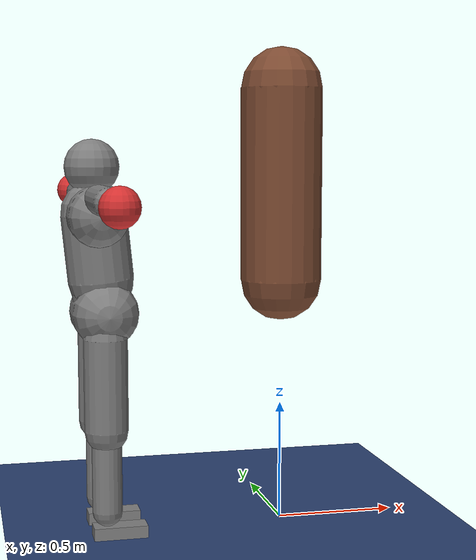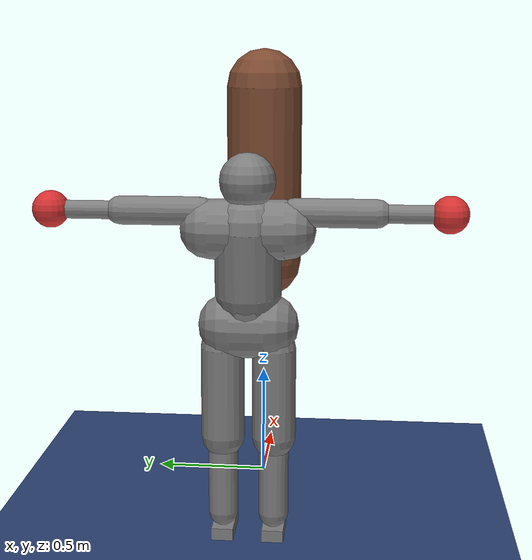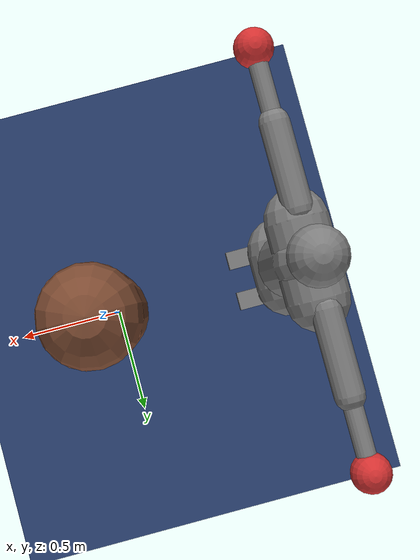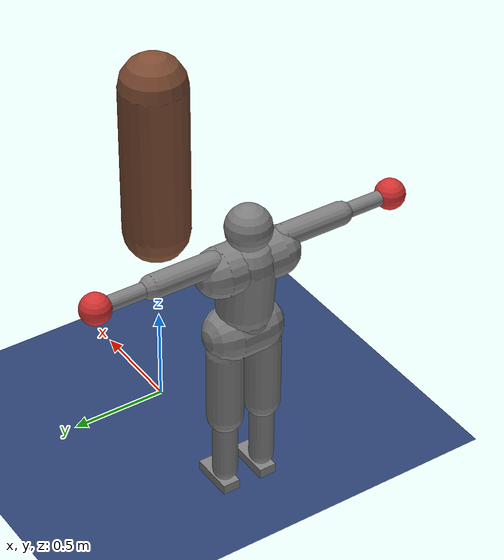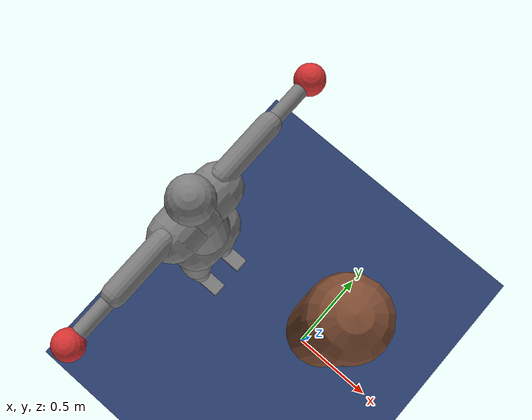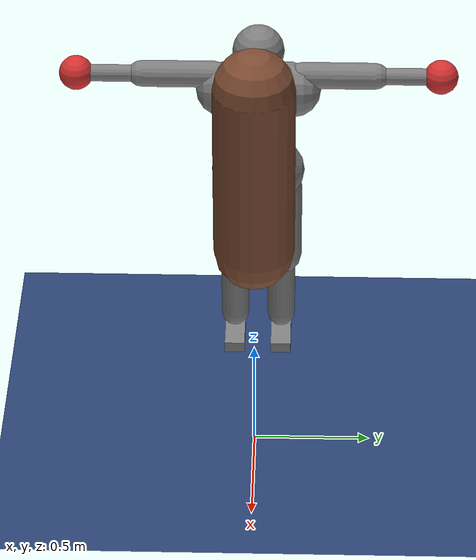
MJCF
<mujoco model="grandpa_bag">
  <compiler angle="degree" inertiafromgeom="true" autolimits="true"/>
  <option timestep="0.005" iterations="10" ls_iterations="10" integrator="implicitfast">
    <flag eulerdamp="disable"/>
  </option>
  <default>
    <geom contype="1" conaffinity="1" condim="3" friction="1.0 0.005 0.0001" density="1000" margin="0"/>
    <joint limited="true"/>
    <position ctrllimited="true"/>
  </default>
  <asset>
    <texture name="grid" type="2d" builtin="checker" rgb1=".18 .28 .48" rgb2=".14 .22 .40" width="300" height="300"/>
    <material name="grid" texture="grid" texrepeat="6 6" reflectance="0"/>
  </asset>
  <worldbody>
    <light pos="0 0 5" dir="0 0 -1" directional="true"/>
    <geom name="floor" type="plane" size="0 0 0.05" material="grid" friction="1.0 0.005 0.0001"/>

    <body name="a_pelvis" pos="-0.7500 0.0000 0.9146" quat="1.00000 0 0 0.00000">
      <freejoint name="a_root"/>
      <geom name="a_pelvis_geom" type="capsule" fromto="0.0000 -0.0700 0.0000 0.0000 0.0700 0.0000" size="0.1350" mass="6.7965" />
      <geom name="a_pelvis_up" type="capsule" fromto="0.0000 0.0000 0.0000 -0.0099 0.0000 0.0920" size="0.1215" mass="4.3789" />
      <body name="a_torso" pos="-0.0099 0.0000 0.1120">
        <joint name="a_abdomen_z" type="hinge" axis="0 0 1" range="-45 45" damping="0.5" armature="0.08" stiffness="0"/>
        <joint name="a_abdomen_y" type="hinge" axis="0 1 0" range="-60 30" damping="0.5" armature="0.08" stiffness="0"/>
        <joint name="a_abdomen_x" type="hinge" axis="1 0 0" range="-35 35" damping="0.5" armature="0.08" stiffness="0"/>
        <geom name="a_torso_geom" type="capsule" fromto="0.0000 0.0000 0.0200 -0.0268 0.0000 0.2932" size="0.1350" mass="27.9385" />
        <geom name="a_chest_geom" type="capsule" fromto="-0.0230 -0.1505 0.2866 -0.0230 0.1505 0.2866" size="0.1215" mass="0.5"/>
        <geom name="a_head_geom" type="sphere" pos="-0.0325 0.0000 0.4807" size="0.1127" mass="6.3747" />
        <body name="a_upper_arm_l" pos="-0.0287 0.1881 0.3582">
          <joint name="a_shoulder_x_l" type="hinge" axis="1 0 0" range="-170 30" damping="0.5" armature="0.03" stiffness="0"/>
          <joint name="a_shoulder_z_l" type="hinge" axis="0 0 1" range="-110 110" damping="0.5" armature="0.03" stiffness="0"/>
          <geom name="a_upper_arm_l_geom" type="capsule" fromto="0.0000 0.0000 0.0000 0.0000 0.3197 0.0000" size="0.0580" mass="2.2036" />
          <body name="a_forearm_l" pos="0.0000 0.3197 0.0000">
            <joint name="a_elbow_l" type="hinge" axis="0 0 1" range="-150 0" damping="0.5" armature="0.02" stiffness="0"/>
            <geom name="a_forearm_l_geom" type="capsule" fromto="0.0000 0.0000 0.0000 0.0000 0.2162 0.0000" size="0.0373" mass="1.2592" />
            <geom name="a_glove_l" type="sphere" pos="0.0000 0.2837 0.0000" size="0.0750" mass="0.7552" rgba="0.85 0.2 0.2 1"/>
          </body>
        </body>
        <body name="a_upper_arm_r" pos="-0.0287 -0.1881 0.3582">
          <joint name="a_shoulder_x_r" type="hinge" axis="1 0 0" range="-30 170" damping="0.5" armature="0.03" stiffness="0"/>
          <joint name="a_shoulder_z_r" type="hinge" axis="0 0 1" range="-110 110" damping="0.5" armature="0.03" stiffness="0"/>
          <geom name="a_upper_arm_r_geom" type="capsule" fromto="0.0000 0.0000 0.0000 0.0000 -0.3197 0.0000" size="0.0580" mass="2.2036" />
          <body name="a_forearm_r" pos="0.0000 -0.3197 0.0000">
            <joint name="a_elbow_r" type="hinge" axis="0 0 1" range="0 150" damping="0.5" armature="0.02" stiffness="0"/>
            <geom name="a_forearm_r_geom" type="capsule" fromto="0.0000 0.0000 0.0000 0.0000 -0.2162 0.0000" size="0.0373" mass="1.2592" />
            <geom name="a_glove_r" type="sphere" pos="0.0000 -0.2837 0.0000" size="0.0750" mass="0.7552" rgba="0.85 0.2 0.2 1"/>
          </body>
        </body>
      </body>
      <body name="a_thigh_l" pos="-0.0082 0.1049 -0.0932">
        <joint name="a_hip_x_l" type="hinge" axis="1 0 0" range="-40 40" damping="0.5" armature="0.1" stiffness="0"/>
        <joint name="a_hip_z_l" type="hinge" axis="0 0 1" range="-35 35" damping="0.5" armature="0.1" stiffness="0"/>
        <joint name="a_hip_y_l" type="hinge" axis="0 1 0" range="-120 30" damping="0.5" armature="0.1" stiffness="0"/>
        <geom name="a_thigh_l_geom" type="capsule" fromto="0.0000 0.0000 0.0000 0.0000 0.0000 -0.3769" size="0.0900" mass="7.8700" />
        <body name="a_shin_l" pos="0.0000 0.0000 -0.3769">
          <joint name="a_knee_l" type="hinge" axis="0 1 0" range="0 150" damping="0.5" armature="0.1" stiffness="0"/>
          <geom name="a_shin_l_geom" type="capsule" fromto="0.0000 0.0000 0.0000 0.0000 0.0000 -0.3360" size="0.0620" mass="3.6596" />
          <body name="a_foot_l" pos="0.0000 0.0000 -0.3360">
            <joint name="a_ankle_y_l" type="hinge" axis="0 1 0" range="-20 50" damping="0.5" armature="0.03" stiffness="0"/>
            <joint name="a_ankle_x_l" type="hinge" axis="1 0 0" range="-25 25" damping="0.5" armature="0.03" stiffness="0"/>
            <geom name="a_foot_l_geom" type="box" pos="0.0506 0.0000 -0.0887" size="0.1100 0.0450 0.0280" mass="1.1412" friction="1.0 0.005 0.0001"/>
            <site name="a_foot_l_site" pos="0.0506 0.0000 -0.0887" size="0.01"/>
          </body>
        </body>
      </body>
      <body name="a_thigh_r" pos="-0.0082 -0.1049 -0.0932">
        <joint name="a_hip_x_r" type="hinge" axis="1 0 0" range="-40 40" damping="0.5" armature="0.1" stiffness="0"/>
        <joint name="a_hip_z_r" type="hinge" axis="0 0 1" range="-35 35" damping="0.5" armature="0.1" stiffness="0"/>
        <joint name="a_hip_y_r" type="hinge" axis="0 1 0" range="-120 30" damping="0.5" armature="0.1" stiffness="0"/>
        <geom name="a_thigh_r_geom" type="capsule" fromto="0.0000 0.0000 0.0000 0.0000 0.0000 -0.3769" size="0.0900" mass="7.8700" />
        <body name="a_shin_r" pos="0.0000 0.0000 -0.3769">
          <joint name="a_knee_r" type="hinge" axis="0 1 0" range="0 150" damping="0.5" armature="0.1" stiffness="0"/>
          <geom name="a_shin_r_geom" type="capsule" fromto="0.0000 0.0000 0.0000 0.0000 0.0000 -0.3360" size="0.0620" mass="3.6596" />
          <body name="a_foot_r" pos="0.0000 0.0000 -0.3360">
            <joint name="a_ankle_y_r" type="hinge" axis="0 1 0" range="-20 50" damping="0.5" armature="0.03" stiffness="0"/>
            <joint name="a_ankle_x_r" type="hinge" axis="1 0 0" range="-25 25" damping="0.5" armature="0.03" stiffness="0"/>
            <geom name="a_foot_r_geom" type="box" pos="0.0506 0.0000 -0.0887" size="0.1100 0.0450 0.0280" mass="1.1412" friction="1.0 0.005 0.0001"/>
            <site name="a_foot_r_site" pos="0.0506 0.0000 -0.0887" size="0.01"/>
          </body>
        </body>
      </body>
    </body>
    <body name="bag" pos="0 0 2.45">
      <joint name="bag_swing" type="ball" damping="6"/>
      <geom name="bag_geom" type="capsule" fromto="0 0 -0.62 0 0 -1.42" size="0.17" mass="35" rgba="0.5 0.3 0.2 1"/>
      <site name="bag_head" pos="0 0 -0.82" size="0.02"/>
      <site name="bag_body" pos="0 0 -1.22" size="0.02"/>
    </body>
  </worldbody>
  <contact>
    <exclude body1="a_pelvis" body2="a_torso"/>
    <exclude body1="a_pelvis" body2="a_thigh_l"/>
    <exclude body1="a_thigh_l" body2="a_shin_l"/>
    <exclude body1="a_shin_l" body2="a_foot_l"/>
    <exclude body1="a_torso" body2="a_upper_arm_l"/>
    <exclude body1="a_upper_arm_l" body2="a_forearm_l"/>
    <exclude body1="a_pelvis" body2="a_thigh_r"/>
    <exclude body1="a_thigh_r" body2="a_shin_r"/>
    <exclude body1="a_shin_r" body2="a_foot_r"/>
    <exclude body1="a_torso" body2="a_upper_arm_r"/>
    <exclude body1="a_upper_arm_r" body2="a_forearm_r"/>
  </contact>
  <actuator>
    <position name="a_abdomen_z" joint="a_abdomen_z" kp="216.45" kv="10.101" forcerange="-81.77 81.77" ctrlrange="-0.7854 0.7854"/>
    <position name="a_abdomen_y" joint="a_abdomen_y" kp="216.45" kv="10.101" forcerange="-81.77 81.77" ctrlrange="-1.0472 0.5236"/>
    <position name="a_abdomen_x" joint="a_abdomen_x" kp="216.45" kv="10.101" forcerange="-81.77 81.77" ctrlrange="-0.6109 0.6109"/>
    <position name="a_shoulder_x_l" joint="a_shoulder_x_l" kp="76.96" kv="3.848" forcerange="-48.1 48.1" ctrlrange="-2.9671 0.5236"/>
    <position name="a_shoulder_z_l" joint="a_shoulder_z_l" kp="76.96" kv="3.848" forcerange="-48.1 48.1" ctrlrange="-1.9199 1.9199"/>
    <position name="a_elbow_l" joint="a_elbow_l" kp="52.91" kv="2.645" forcerange="-33.67 33.67" ctrlrange="-2.6180 0.0000"/>
    <position name="a_shoulder_x_r" joint="a_shoulder_x_r" kp="76.96" kv="3.848" forcerange="-48.1 48.1" ctrlrange="-0.5236 2.9671"/>
    <position name="a_shoulder_z_r" joint="a_shoulder_z_r" kp="76.96" kv="3.848" forcerange="-48.1 48.1" ctrlrange="-1.9199 1.9199"/>
    <position name="a_elbow_r" joint="a_elbow_r" kp="52.91" kv="2.645" forcerange="-33.67 33.67" ctrlrange="0.0000 2.6180"/>
    <position name="a_hip_x_l" joint="a_hip_x_l" kp="288.6" kv="14.43" forcerange="-115.44 115.44" ctrlrange="-0.6981 0.6981"/>
    <position name="a_hip_z_l" joint="a_hip_z_l" kp="288.6" kv="14.43" forcerange="-115.44 115.44" ctrlrange="-0.6109 0.6109"/>
    <position name="a_hip_y_l" joint="a_hip_y_l" kp="288.6" kv="14.43" forcerange="-115.44 115.44" ctrlrange="-2.0944 0.5236"/>
    <position name="a_knee_l" joint="a_knee_l" kp="288.6" kv="14.43" forcerange="-125.06 125.06" ctrlrange="0.0000 2.6180"/>
    <position name="a_ankle_y_l" joint="a_ankle_y_l" kp="360.75" kv="14.43" forcerange="-105.82 105.82" ctrlrange="-0.3491 0.8727"/>
    <position name="a_ankle_x_l" joint="a_ankle_x_l" kp="38.48" kv="1.924" forcerange="-28.86 28.86" ctrlrange="-0.4363 0.4363"/>
    <position name="a_hip_x_r" joint="a_hip_x_r" kp="288.6" kv="14.43" forcerange="-115.44 115.44" ctrlrange="-0.6981 0.6981"/>
    <position name="a_hip_z_r" joint="a_hip_z_r" kp="288.6" kv="14.43" forcerange="-115.44 115.44" ctrlrange="-0.6109 0.6109"/>
    <position name="a_hip_y_r" joint="a_hip_y_r" kp="288.6" kv="14.43" forcerange="-115.44 115.44" ctrlrange="-2.0944 0.5236"/>
    <position name="a_knee_r" joint="a_knee_r" kp="288.6" kv="14.43" forcerange="-125.06 125.06" ctrlrange="0.0000 2.6180"/>
    <position name="a_ankle_y_r" joint="a_ankle_y_r" kp="360.75" kv="14.43" forcerange="-105.82 105.82" ctrlrange="-0.3491 0.8727"/>
    <position name="a_ankle_x_r" joint="a_ankle_x_r" kp="38.48" kv="1.924" forcerange="-28.86 28.86" ctrlrange="-0.4363 0.4363"/>
  </actuator>
  <keyframe>
    <key name="stand" qpos="-0.7500 0.0000 0.9062 1.00000 0 0 0.00000 0.0000 0.0000 0.0000 -1.3265 -0.7330 -1.9548 1.3265 0.7330 1.9548 0.0000 0.0000 -0.1782 0.4538 -0.2756 0.0000 0.0000 0.0000 -0.1782 0.4538 -0.2756 0.0000 1 0 0 0"/>
  </keyframe>
</mujoco>
